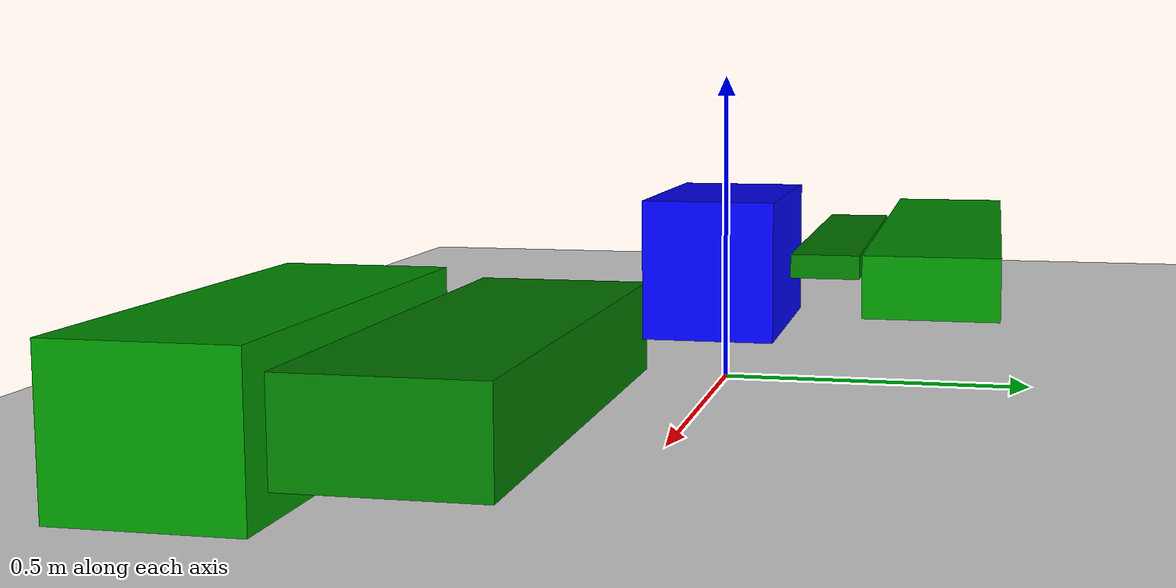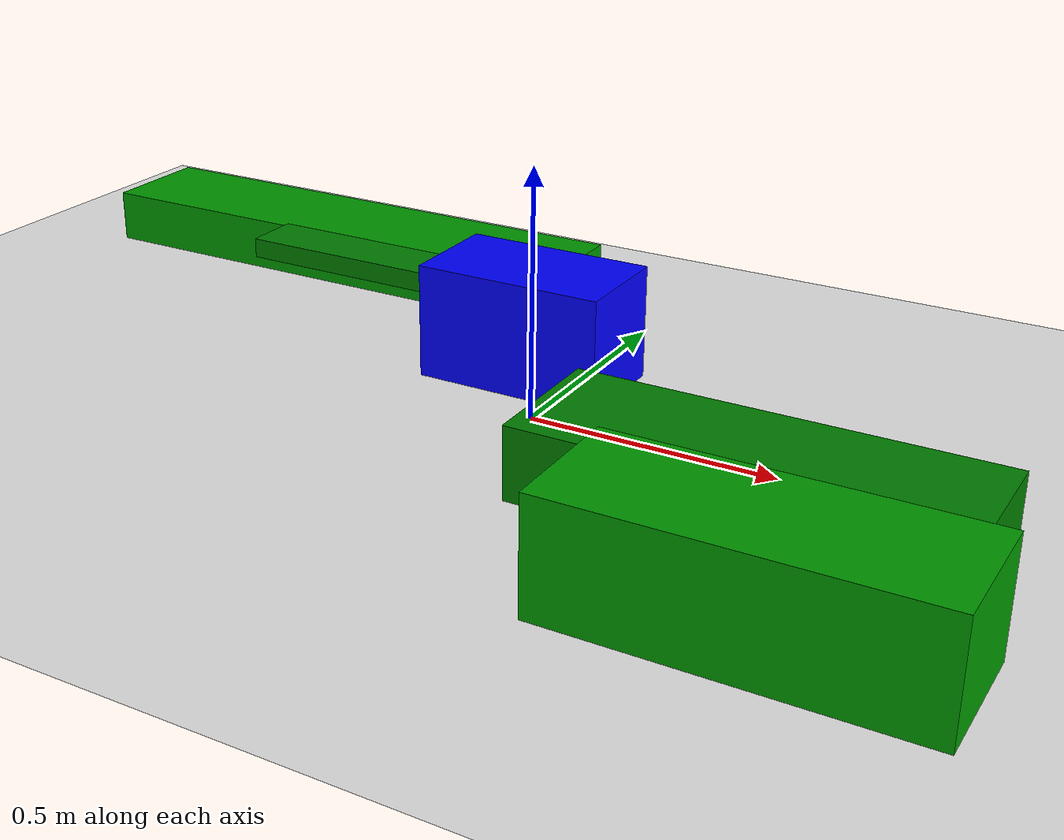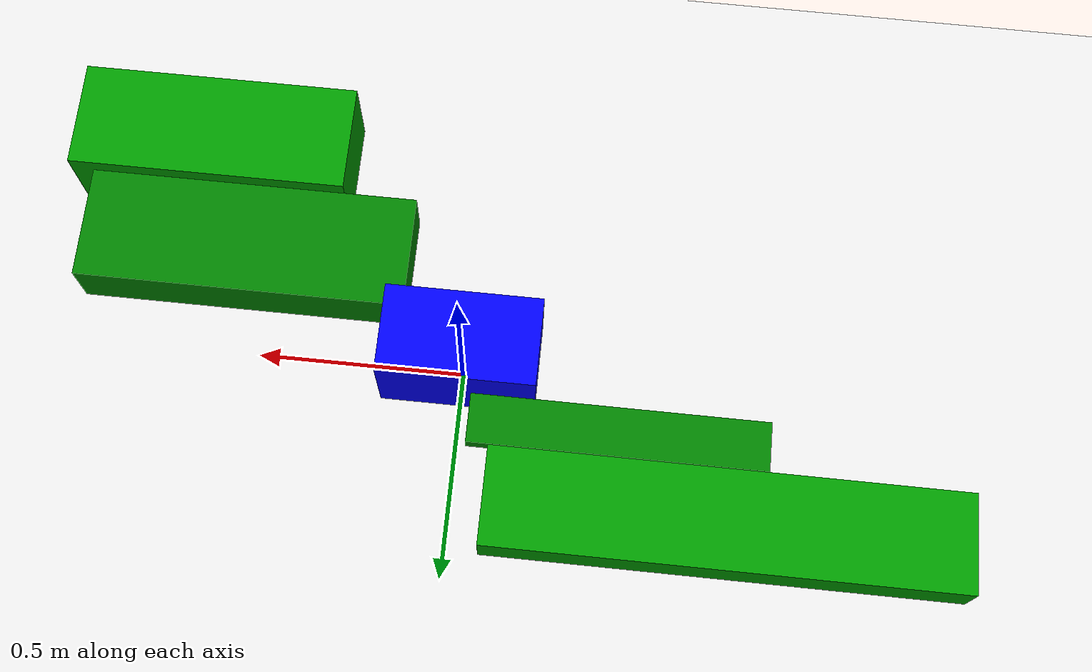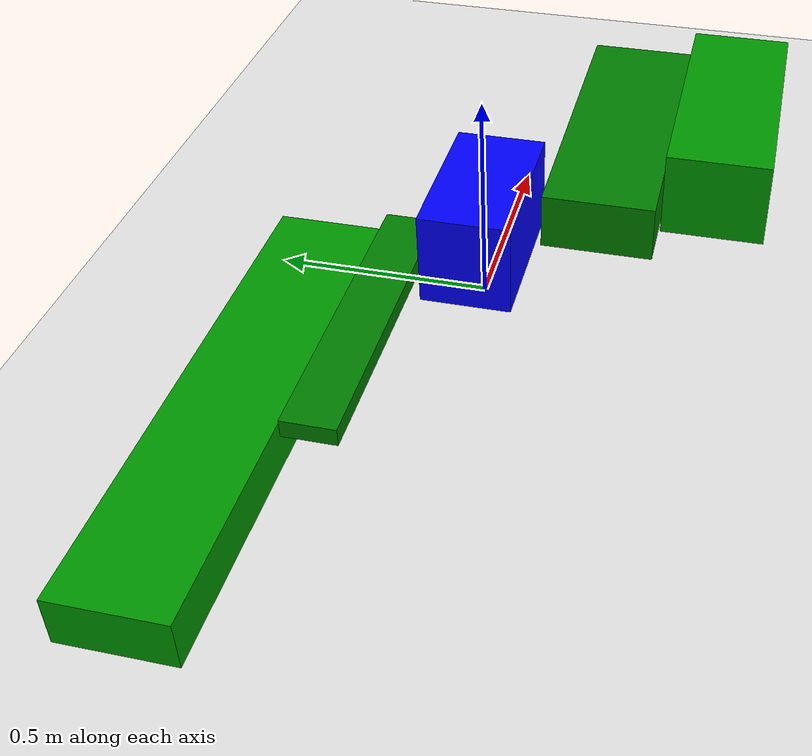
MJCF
<mujoco>
    <worldbody>
    <light diffuse=".5 .5 .5" pos="0 0 3" dir="0 0 -1"/>
    <geom type="plane" size="5 5 0.1" rgba=".9 0.9 0.9 1"/>
    <body name="main body" pos="0 0 .2">
        <joint type="free"/>
        <geom type="box" size="0.1823618432185498 0.10347852472478945 0.10960618824937188" rgba="0 0 1 1" mass="1"/>
        <site name="marker" pos="0 0 0" size="0.05"/>
        <site name="robot_center" pos="0 0 0" size="0.01"/>
        <body name="left_leg1" pos="-0.38 0.1612276834937822 -0.016055586775445555">
            <joint name="left_leg1_joint" type="hinge" axis="0 1 0" pos="0 0 0"/>
            <geom type="box" size="0.3458965063515525 0.05774915876899273 0.02" rgba="0 .5 0 1" mass="1"/>
            <body name="left_leg2" pos="-0.2607771055325429 0.17417936104653328 -0.04">
                <joint name="left_leg2_joint" type="hinge" axis="0 1 0" pos="0 0 0"/>
                <geom type="box" size="0.5553004084121641 0.11643020227754054 0.05415659543259784" rgba="0 .6 0 1" mass="1"/>
            </body>
        </body>
        <body name="right_leg1" pos="0.5466207732215939 -0.23913327762903053 -0.09338978554123224">
            <joint name="right_leg1_joint" type="hinge" axis="0 1 0" pos="0 0 0"/>
            <geom type="box" size="0.39580820314313025 0.13565475290424106 0.07031764380456114" rgba="0 .5 0 1" mass="1"/>
            <body name="right_leg2" pos="0.1150039822423069 -0.26427520760513146 -0.012785657810621777">
                <joint name="right_leg2_joint" type="hinge" axis="0 1 0" pos="0 0 0"/>
                <geom type="box" size="0.3347364345708415 0.1286204547008904 0.12327901580387958" rgba="0 .6 0 1" mass="1"/>
            </body>
        </body>
    </body>
    </worldbody>
    <sensor>
        <framepos objtype="site" objname="marker"/>
        <velocimeter name="robot_velocity" site="robot_center"/>
    </sensor>
    <actuator>
        <position joint="left_leg1_joint" kp="10"/>
        <position joint="left_leg2_joint" kp="10"/>
        <position joint="right_leg1_joint" kp="10"/>
        <position joint="right_leg2_joint" kp="10"/>
    </actuator>
</mujoco>
